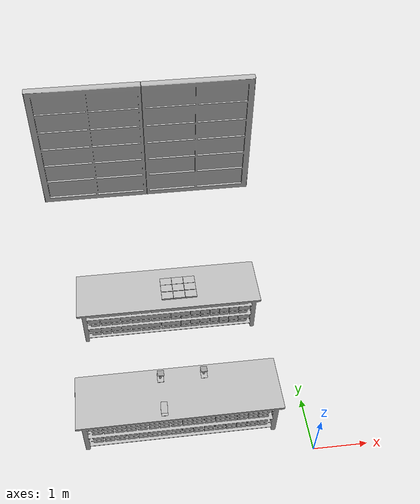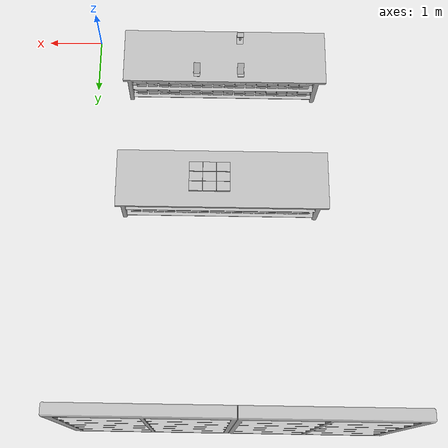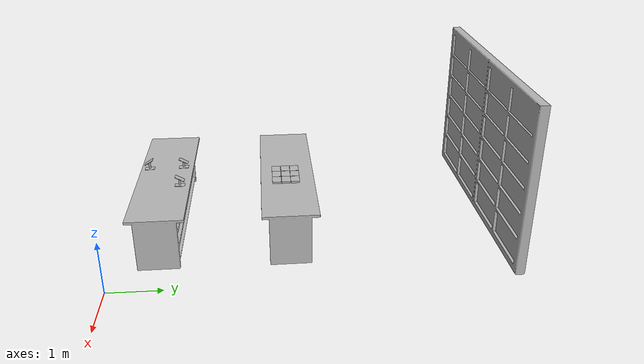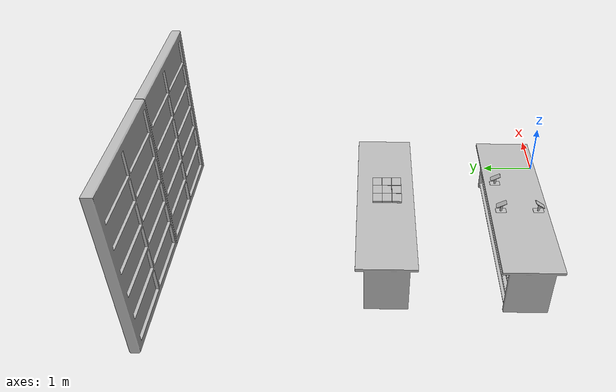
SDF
<sdf version="1.7">
 <world name="default">
  <model name="BookE_01_006">
   <frame name="aws_robomaker_retail_BookE_01::__model__" attached_to="aws_robomaker_retail_BookE_01::link">
    <pose relative_to="__model__">0 0 0 0 -0 0</pose>
   </frame>
   <link name="aws_robomaker_retail_BookE_01::link">
    <inertial>
     <mass>1</mass>
     <inertia><ixy>0</ixy><ixz>0</ixz><iyz>0</iyz><ixx>0.0666</ixx><iyy>0.0346</iyy><izz>0.0986</izz></inertia>
    </inertial>
    <collision name="collision">
     <geometry>
      <mesh>
       <uri>file://models/aws_robomaker_retail_BookE_01/meshes/aws_BookE_01_collision.DAE</uri>
       <scale>1 1 1</scale>
      </mesh>
     </geometry>
    </collision>
    <visual name="visual">
     <geometry>
      <mesh><uri>file://models/aws_robomaker_retail_BookE_01/meshes/aws_BookE_01_visual.DAE</uri></mesh>
     </geometry>
     <meta><layer>1</layer></meta>
    </visual>
    <pose relative_to="aws_robomaker_retail_BookE_01::__model__">0 0 0 0 -0 0</pose>
   </link>
   <static>1</static>
   <pose>-1.88942 3.34639 1.05494 0 -0 1.56816</pose>
  </model>
  <model name="BookE_01_007">
   <frame name="aws_robomaker_retail_BookE_01::__model__" attached_to="aws_robomaker_retail_BookE_01::link">
    <pose relative_to="__model__">0 0 0 0 -0 0</pose>
   </frame>
   <link name="aws_robomaker_retail_BookE_01::link">
    <inertial>
     <mass>1</mass>
     <inertia><ixy>0</ixy><ixz>0</ixz><iyz>0</iyz><ixx>0.0666</ixx><iyy>0.0346</iyy><izz>0.0986</izz></inertia>
    </inertial>
    <collision name="collision">
     <geometry>
      <mesh>
       <uri>file://models/aws_robomaker_retail_BookE_01/meshes/aws_BookE_01_collision.DAE</uri>
       <scale>1 1 1</scale>
      </mesh>
     </geometry>
    </collision>
    <visual name="visual">
     <geometry>
      <mesh><uri>file://models/aws_robomaker_retail_BookE_01/meshes/aws_BookE_01_visual.DAE</uri></mesh>
     </geometry>
     <meta><layer>1</layer></meta>
    </visual>
    <pose relative_to="aws_robomaker_retail_BookE_01::__model__">0 0 0 0 -0 0</pose>
   </link>
   <static>1</static>
   <pose>-2.12373 3.34639 1.05494 0 -0 1.56816</pose>
  </model>
  <model name="BookE_01_014">
   <frame name="aws_robomaker_retail_BookE_01::__model__" attached_to="aws_robomaker_retail_BookE_01::link">
    <pose relative_to="__model__">0 0 0 0 -0 0</pose>
   </frame>
   <link name="aws_robomaker_retail_BookE_01::link">
    <inertial>
     <mass>1</mass>
     <inertia><ixy>0</ixy><ixz>0</ixz><iyz>0</iyz><ixx>0.0666</ixx><iyy>0.0346</iyy><izz>0.0986</izz></inertia>
    </inertial>
    <collision name="collision">
     <geometry>
      <mesh>
       <uri>file://models/aws_robomaker_retail_BookE_01/meshes/aws_BookE_01_collision.DAE</uri>
       <scale>1 1 1</scale>
      </mesh>
     </geometry>
    </collision>
    <visual name="visual">
     <geometry>
      <mesh><uri>file://models/aws_robomaker_retail_BookE_01/meshes/aws_BookE_01_visual.DAE</uri></mesh>
     </geometry>
     <meta><layer>1</layer></meta>
    </visual>
    <pose relative_to="aws_robomaker_retail_BookE_01::__model__">0 0 0 0 -0 0</pose>
   </link>
   <static>1</static>
   <pose>-1.88942 2.99369 1.05494 0 -0 1.56816</pose>
  </model>
  <model name="BookE_01_015">
   <frame name="aws_robomaker_retail_BookE_01::__model__" attached_to="aws_robomaker_retail_BookE_01::link">
    <pose relative_to="__model__">0 0 0 0 -0 0</pose>
   </frame>
   <link name="aws_robomaker_retail_BookE_01::link">
    <inertial>
     <mass>1</mass>
     <inertia><ixy>0</ixy><ixz>0</ixz><iyz>0</iyz><ixx>0.0666</ixx><iyy>0.0346</iyy><izz>0.0986</izz></inertia>
    </inertial>
    <collision name="collision">
     <geometry>
      <mesh>
       <uri>file://models/aws_robomaker_retail_BookE_01/meshes/aws_BookE_01_collision.DAE</uri>
       <scale>1 1 1</scale>
      </mesh>
     </geometry>
    </collision>
    <visual name="visual">
     <geometry>
      <mesh><uri>file://models/aws_robomaker_retail_BookE_01/meshes/aws_BookE_01_visual.DAE</uri></mesh>
     </geometry>
     <meta><layer>1</layer></meta>
    </visual>
    <pose relative_to="aws_robomaker_retail_BookE_01::__model__">0 0 0 0 -0 0</pose>
   </link>
   <static>1</static>
   <pose>-2.12373 2.99369 1.05494 0 -0 1.56816</pose>
  </model>
  <model name="BookE_01_016">
   <frame name="aws_robomaker_retail_BookE_01::__model__" attached_to="aws_robomaker_retail_BookE_01::link">
    <pose relative_to="__model__">0 0 0 0 -0 0</pose>
   </frame>
   <link name="aws_robomaker_retail_BookE_01::link">
    <inertial>
     <mass>1</mass>
     <inertia><ixy>0</ixy><ixz>0</ixz><iyz>0</iyz><ixx>0.0666</ixx><iyy>0.0346</iyy><izz>0.0986</izz></inertia>
    </inertial>
    <collision name="collision">
     <geometry>
      <mesh>
       <uri>file://models/aws_robomaker_retail_BookE_01/meshes/aws_BookE_01_collision.DAE</uri>
       <scale>1 1 1</scale>
      </mesh>
     </geometry>
    </collision>
    <visual name="visual">
     <geometry>
      <mesh><uri>file://models/aws_robomaker_retail_BookE_01/meshes/aws_BookE_01_visual.DAE</uri></mesh>
     </geometry>
     <meta><layer>1</layer></meta>
    </visual>
    <pose relative_to="aws_robomaker_retail_BookE_01::__model__">0 0 0 0 -0 0</pose>
   </link>
   <static>1</static>
   <pose>-2.35737 2.99369 1.05494 0 -0 1.56816</pose>
  </model>
  <model name="BookE_01_017">
   <frame name="aws_robomaker_retail_BookE_01::__model__" attached_to="aws_robomaker_retail_BookE_01::link">
    <pose relative_to="__model__">0 0 0 0 -0 0</pose>
   </frame>
   <link name="aws_robomaker_retail_BookE_01::link">
    <inertial>
     <mass>1</mass>
     <inertia><ixy>0</ixy><ixz>0</ixz><iyz>0</iyz><ixx>0.0666</ixx><iyy>0.0346</iyy><izz>0.0986</izz></inertia>
    </inertial>
    <collision name="collision">
     <geometry>
      <mesh>
       <uri>file://models/aws_robomaker_retail_BookE_01/meshes/aws_BookE_01_collision.DAE</uri>
       <scale>1 1 1</scale>
      </mesh>
     </geometry>
    </collision>
    <visual name="visual">
     <geometry>
      <mesh><uri>file://models/aws_robomaker_retail_BookE_01/meshes/aws_BookE_01_visual.DAE</uri></mesh>
     </geometry>
     <meta><layer>1</layer></meta>
    </visual>
    <pose relative_to="aws_robomaker_retail_BookE_01::__model__">0 0 0 0 -0 0</pose>
   </link>
   <static>1</static>
   <pose>-1.88942 3.17292 1.05494 0 -0 1.56816</pose>
  </model>
  <model name="BookE_01_018">
   <frame name="aws_robomaker_retail_BookE_01::__model__" attached_to="aws_robomaker_retail_BookE_01::link">
    <pose relative_to="__model__">0 0 0 0 -0 0</pose>
   </frame>
   <link name="aws_robomaker_retail_BookE_01::link">
    <inertial>
     <mass>1</mass>
     <inertia><ixy>0</ixy><ixz>0</ixz><iyz>0</iyz><ixx>0.0666</ixx><iyy>0.0346</iyy><izz>0.0986</izz></inertia>
    </inertial>
    <collision name="collision">
     <geometry>
      <mesh>
       <uri>file://models/aws_robomaker_retail_BookE_01/meshes/aws_BookE_01_collision.DAE</uri>
       <scale>1 1 1</scale>
      </mesh>
     </geometry>
    </collision>
    <visual name="visual">
     <geometry>
      <mesh><uri>file://models/aws_robomaker_retail_BookE_01/meshes/aws_BookE_01_visual.DAE</uri></mesh>
     </geometry>
     <meta><layer>1</layer></meta>
    </visual>
    <pose relative_to="aws_robomaker_retail_BookE_01::__model__">0 0 0 0 -0 0</pose>
   </link>
   <static>1</static>
   <pose>-2.12373 3.17292 1.05494 0 -0 1.56816</pose>
  </model>
  <model name="BookE_01_019">
   <frame name="aws_robomaker_retail_BookE_01::__model__" attached_to="aws_robomaker_retail_BookE_01::link">
    <pose relative_to="__model__">0 0 0 0 -0 0</pose>
   </frame>
   <link name="aws_robomaker_retail_BookE_01::link">
    <inertial>
     <mass>1</mass>
     <inertia><ixy>0</ixy><ixz>0</ixz><iyz>0</iyz><ixx>0.0666</ixx><iyy>0.0346</iyy><izz>0.0986</izz></inertia>
    </inertial>
    <collision name="collision">
     <geometry>
      <mesh>
       <uri>file://models/aws_robomaker_retail_BookE_01/meshes/aws_BookE_01_collision.DAE</uri>
       <scale>1 1 1</scale>
      </mesh>
     </geometry>
    </collision>
    <visual name="visual">
     <geometry>
      <mesh><uri>file://models/aws_robomaker_retail_BookE_01/meshes/aws_BookE_01_visual.DAE</uri></mesh>
     </geometry>
     <meta><layer>1</layer></meta>
    </visual>
    <pose relative_to="aws_robomaker_retail_BookE_01::__model__">0 0 0 0 -0 0</pose>
   </link>
   <static>1</static>
   <pose>-2.35737 3.17292 1.05494 0 -0 1.56816</pose>
  </model>
  <model name="BookE_01_030">
   <frame name="aws_robomaker_retail_BookE_01::__model__" attached_to="aws_robomaker_retail_BookE_01::link">
    <pose relative_to="__model__">0 0 0 0 -0 0</pose>
   </frame>
   <link name="aws_robomaker_retail_BookE_01::link">
    <inertial>
     <mass>1</mass>
     <inertia><ixy>0</ixy><ixz>0</ixz><iyz>0</iyz><ixx>0.0666</ixx><iyy>0.0346</iyy><izz>0.0986</izz></inertia>
    </inertial>
    <collision name="collision">
     <geometry>
      <mesh>
       <uri>file://models/aws_robomaker_retail_BookE_01/meshes/aws_BookE_01_collision.DAE</uri>
       <scale>1 1 1</scale>
      </mesh>
     </geometry>
    </collision>
    <visual name="visual">
     <geometry>
      <mesh><uri>file://models/aws_robomaker_retail_BookE_01/meshes/aws_BookE_01_visual.DAE</uri></mesh>
     </geometry>
     <meta><layer>1</layer></meta>
    </visual>
    <pose relative_to="aws_robomaker_retail_BookE_01::__model__">0 0 0 0 -0 0</pose>
   </link>
   <static>1</static>
   <pose>-2.35737 3.34639 1.05494 0 -0 1.56816</pose>
  </model>
  <model name="DeskA_01_001">
   <frame name="aws_robomaker_retail_DeskA_01::__model__" attached_to="aws_robomaker_retail_DeskA_01::link">
    <pose relative_to="__model__">0 0 0 0 -0 0</pose>
   </frame>
   <link name="aws_robomaker_retail_DeskA_01::link">
    <inertial>
     <mass>20</mass>
     <inertia><ixx>3.49717</ixx><ixy>0</ixy><ixz>0</ixz><iyy>23.5599</iyy><iyz>0</iyz><izz>23.5702</izz></inertia>
    </inertial>
    <collision name="collision">
     <geometry>
      <mesh>
       <uri>file://models/aws_robomaker_retail_DeskA_01/meshes/aws_DeskA_01_collision.DAE</uri>
       <scale>1 1 1</scale>
      </mesh>
     </geometry>
    </collision>
    <visual name="visual">
     <geometry>
      <mesh><uri>file://models/aws_robomaker_retail_DeskA_01/meshes/aws_DeskA_01_visual.DAE</uri></mesh>
     </geometry>
     <meta><layer>1</layer></meta>
    </visual>
    <pose relative_to="aws_robomaker_retail_DeskA_01::__model__">0 0 0 0 -0 0</pose>
   </link>
   <static>1</static>
   <pose>-2.34069 3.20012 0.014921 0.000124 -1e-05 0.000376</pose>
  </model>
  <model name="DeskA_01_002">
   <frame name="aws_robomaker_retail_DeskA_01::__model__" attached_to="aws_robomaker_retail_DeskA_01::link">
    <pose relative_to="__model__">0 0 0 0 -0 0</pose>
   </frame>
   <link name="aws_robomaker_retail_DeskA_01::link">
    <inertial>
     <mass>20</mass>
     <inertia><ixx>3.49717</ixx><ixy>0</ixy><ixz>0</ixz><iyy>23.5599</iyy><iyz>0</iyz><izz>23.5702</izz></inertia>
    </inertial>
    <collision name="collision">
     <geometry>
      <mesh>
       <uri>file://models/aws_robomaker_retail_DeskA_01/meshes/aws_DeskA_01_collision.DAE</uri>
       <scale>1 1 1</scale>
      </mesh>
     </geometry>
    </collision>
    <visual name="visual">
     <geometry>
      <mesh><uri>file://models/aws_robomaker_retail_DeskA_01/meshes/aws_DeskA_01_visual.DAE</uri></mesh>
     </geometry>
     <meta><layer>1</layer></meta>
    </visual>
    <pose relative_to="aws_robomaker_retail_DeskA_01::__model__">0 0 0 0 -0 0</pose>
   </link>
   <static>1</static>
   <pose>-2.36994 0.836099 0.00876 -0.000772 -0.001938 1.7e-05</pose>
  </model>
  <model name="DoorB_01_001">
   <frame name="aws_robomaker_retail_DoorB_01::__model__" attached_to="aws_robomaker_retail_DoorB_01::link">
    <pose relative_to="__model__">0 0 0 0 -0 0</pose>
   </frame>
   <link name="aws_robomaker_retail_DoorB_01::link">
    <inertial>
     <mass>50</mass>
     <inertia><ixx>44.5597</ixx><ixy>0</ixy><ixz>0</ixz><iyy>151.699</iyy><iyz>0</iyz><izz>107.806</izz></inertia>
    </inertial>
    <collision name="collision">
     <geometry>
      <mesh>
       <uri>file://models/aws_robomaker_retail_DoorB_01/meshes/aws_DoorB_01_collision.DAE</uri>
       <scale>1 1 1</scale>
      </mesh>
     </geometry>
    </collision>
    <visual name="visual">
     <geometry>
      <mesh><uri>file://models/aws_robomaker_retail_DoorB_01/meshes/aws_DoorB_01_visual.DAE</uri></mesh>
     </geometry>
     <meta><layer>2</layer></meta>
    </visual>
    <pose relative_to="aws_robomaker_retail_DoorB_01::__model__">0 0 0 0 -0 0</pose>
   </link>
   <static>1</static>
   <pose>-2.49246 7.21937 -0.035203 0 -0 0</pose>
  </model>
  <model name="Tablet_01_002">
   <frame name="aws_robomaker_retail_Tablet_01::__model__" attached_to="aws_robomaker_retail_Tablet_01::link">
    <pose relative_to="__model__">0 0 0 0 -0 0</pose>
   </frame>
   <link name="aws_robomaker_retail_Tablet_01::link">
    <inertial>
     <mass>0.5</mass>
     <inertia><ixx>0.035652</ixx><ixy>0</ixy><ixz>0</ixz><iyy>0.01</iyy><iyz>0</iyz><izz>0.041207</izz></inertia>
    </inertial>
    <collision name="collision">
     <geometry>
      <mesh>
       <uri>file://models/aws_robomaker_retail_Tablet_01/meshes/aws_Tablet_01_collision.DAE</uri>
       <scale>1 1 1</scale>
      </mesh>
     </geometry>
    </collision>
    <visual name="visual">
     <geometry>
      <mesh><uri>file://models/aws_robomaker_retail_Tablet_01/meshes/aws_Tablet_01_visual.DAE</uri></mesh>
     </geometry>
     <meta><layer>2</layer></meta>
    </visual>
    <pose relative_to="aws_robomaker_retail_Tablet_01::__model__">0 0 0 0 -0 0</pose>
   </link>
   <static>1</static>
   <pose>-2.65015 0.489109 1.18055 0.579329 0.041534 -0.007936</pose>
  </model>
  <model name="Tablet_01_006">
   <frame name="aws_robomaker_retail_Tablet_01::__model__" attached_to="aws_robomaker_retail_Tablet_01::link">
    <pose relative_to="__model__">0 0 0 0 -0 0</pose>
   </frame>
   <link name="aws_robomaker_retail_Tablet_01::link">
    <inertial>
     <mass>0.5</mass>
     <inertia><ixx>0.035652</ixx><ixy>0</ixy><ixz>0</ixz><iyy>0.01</iyy><iyz>0</iyz><izz>0.041207</izz></inertia>
    </inertial>
    <collision name="collision">
     <geometry>
      <mesh>
       <uri>file://models/aws_robomaker_retail_Tablet_01/meshes/aws_Tablet_01_collision.DAE</uri>
       <scale>1 1 1</scale>
      </mesh>
     </geometry>
    </collision>
    <visual name="visual">
     <geometry>
      <mesh><uri>file://models/aws_robomaker_retail_Tablet_01/meshes/aws_Tablet_01_visual.DAE</uri></mesh>
     </geometry>
     <meta><layer>2</layer></meta>
    </visual>
    <pose relative_to="aws_robomaker_retail_Tablet_01::__model__">0 0 0 0 -0 0</pose>
   </link>
   <static>1</static>
   <pose>-1.87669 1.16382 1.17789 0.513308 -1e-06 3.11006</pose>
  </model>
  <model name="Tablet_01_007">
   <frame name="aws_robomaker_retail_Tablet_01::__model__" attached_to="aws_robomaker_retail_Tablet_01::link">
    <pose relative_to="__model__">0 0 0 0 -0 0</pose>
   </frame>
   <link name="aws_robomaker_retail_Tablet_01::link">
    <inertial>
     <mass>0.5</mass>
     <inertia><ixx>0.035652</ixx><ixy>0</ixy><ixz>0</ixz><iyy>0.01</iyy><iyz>0</iyz><izz>0.041207</izz></inertia>
    </inertial>
    <collision name="collision">
     <geometry>
      <mesh>
       <uri>file://models/aws_robomaker_retail_Tablet_01/meshes/aws_Tablet_01_collision.DAE</uri>
       <scale>1 1 1</scale>
      </mesh>
     </geometry>
    </collision>
    <visual name="visual">
     <geometry>
      <mesh><uri>file://models/aws_robomaker_retail_Tablet_01/meshes/aws_Tablet_01_visual.DAE</uri></mesh>
     </geometry>
     <meta><layer>2</layer></meta>
    </visual>
    <pose relative_to="aws_robomaker_retail_Tablet_01::__model__">0 0 0 0 -0 0</pose>
   </link>
   <static>1</static>
   <pose>-2.64967 1.16382 1.17789 0.513308 -1e-06 3.11006</pose>
  </model>
  <model name="Holder_01_006">
   <frame name="aws_robomaker_retail_Holder_01::__model__" attached_to="aws_robomaker_retail_Holder_01::link">
    <pose relative_to="__model__">0 0 0 0 -0 0</pose>
   </frame>
   <link name="aws_robomaker_retail_Holder_01::link">
    <inertial><mass>1</mass></inertial>
    <collision name="collision">
     <geometry>
      <mesh>
       <uri>file://models/aws_robomaker_retail_Holder_01/meshes/aws_Holder_01_collision.DAE</uri>
       <scale>1 1 1</scale>
      </mesh>
     </geometry>
    </collision>
    <visual name="visual">
     <geometry>
      <mesh><uri>file://models/aws_robomaker_retail_Holder_01/meshes/aws_Holder_01_visual.DAE</uri></mesh>
     </geometry>
     <meta><layer>2</layer></meta>
    </visual>
    <pose relative_to="aws_robomaker_retail_Holder_01::__model__">0 0 0 0 -0 0</pose>
   </link>
   <static>1</static>
   <pose>-2.64781 0.495602 1.03776 0 -0 0</pose>
  </model>
  <model name="Holder_01_010">
   <frame name="aws_robomaker_retail_Holder_01::__model__" attached_to="aws_robomaker_retail_Holder_01::link">
    <pose relative_to="__model__">0 0 0 0 -0 0</pose>
   </frame>
   <link name="aws_robomaker_retail_Holder_01::link">
    <inertial><mass>1</mass></inertial>
    <collision name="collision">
     <geometry>
      <mesh>
       <uri>file://models/aws_robomaker_retail_Holder_01/meshes/aws_Holder_01_collision.DAE</uri>
       <scale>1 1 1</scale>
      </mesh>
     </geometry>
    </collision>
    <visual name="visual">
     <geometry>
      <mesh><uri>file://models/aws_robomaker_retail_Holder_01/meshes/aws_Holder_01_visual.DAE</uri></mesh>
     </geometry>
     <meta><layer>2</layer></meta>
    </visual>
    <pose relative_to="aws_robomaker_retail_Holder_01::__model__">0 0 0 0 -0 0</pose>
   </link>
   <static>1</static>
   <pose>-1.87489 1.16083 1.03776 0 0 -3.13015</pose>
  </model>
  <model name="Holder_01_011">
   <frame name="aws_robomaker_retail_Holder_01::__model__" attached_to="aws_robomaker_retail_Holder_01::link">
    <pose relative_to="__model__">0 0 0 0 -0 0</pose>
   </frame>
   <link name="aws_robomaker_retail_Holder_01::link">
    <inertial><mass>1</mass></inertial>
    <collision name="collision">
     <geometry>
      <mesh>
       <uri>file://models/aws_robomaker_retail_Holder_01/meshes/aws_Holder_01_collision.DAE</uri>
       <scale>1 1 1</scale>
      </mesh>
     </geometry>
    </collision>
    <visual name="visual">
     <geometry>
      <mesh><uri>file://models/aws_robomaker_retail_Holder_01/meshes/aws_Holder_01_visual.DAE</uri></mesh>
     </geometry>
     <meta><layer>2</layer></meta>
    </visual>
    <pose relative_to="aws_robomaker_retail_Holder_01::__model__">0 0 0 0 -0 0</pose>
   </link>
   <static>1</static>
   <pose>-2.65916 1.16083 1.03776 0 0 -3.13015</pose>
  </model>
 </world>
</sdf>
